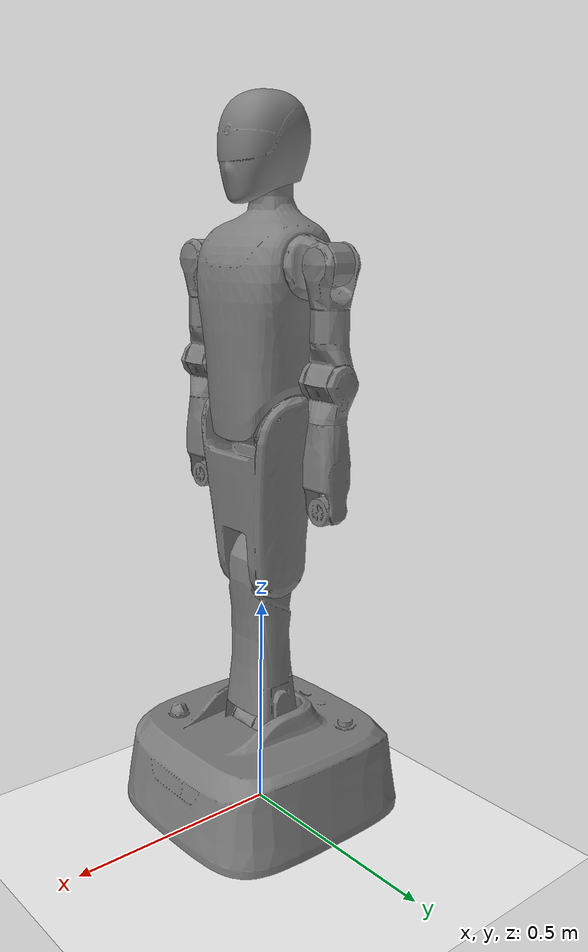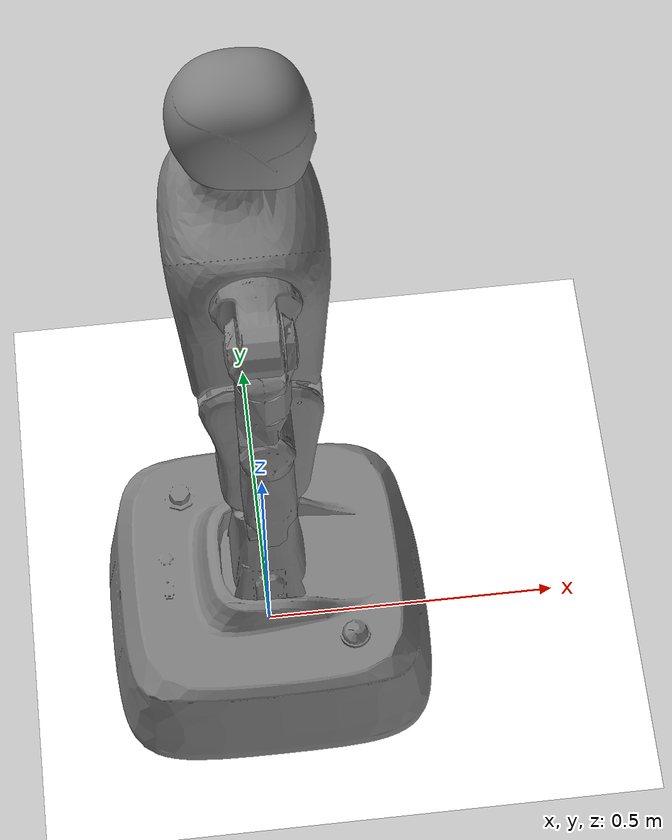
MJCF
<mujoco model="SR1_V1.0.0">
  <compiler angle="radian" />
  <asset>
    <mesh name="mbase" content_type="model/stl" file="meshes/mbase.stl" scale="0.001 0.001 0.001" />
    <mesh name="mfl1_hipr" content_type="model/stl" file="meshes/mfl1_hipr.stl" scale="0.001 0.001 0.001" />
    <mesh name="mfr1_hipr" content_type="model/stl" file="meshes/mfr1_hipr.stl" scale="0.001 0.001 0.001" />
    <mesh name="mrl1_hipr" content_type="model/stl" file="meshes/mrl1_hipr.stl" scale="0.001 0.001 0.001" />
    <mesh name="mrr1_hipr" content_type="model/stl" file="meshes/mrr1_hipr.stl" scale="0.001 0.001 0.001" />
    <mesh name="mwaist_base" content_type="model/stl" file="meshes/mwaist_base.stl" scale="0.001 0.001 0.001" />
    <mesh name="mwb1_waistr" content_type="model/stl" file="meshes/mwb1_waistr.stl" scale="0.001 0.001 0.001" />
    <mesh name="mwb2_waisty" content_type="model/stl" file="meshes/mwb2_waisty.stl" scale="0.001 0.001 0.001" />
    <mesh name="mwb3_waistp" content_type="model/stl" file="meshes/mwb3_waistp.stl" scale="0.001 0.001 0.001" />
    <mesh name="mal0_base" content_type="model/stl" file="meshes/mal0_base.stl" scale="0.001 0.001 0.001" />
    <mesh name="mar0_base" content_type="model/stl" file="meshes/mar0_base.stl" scale="0.001 0.001 0.001" />
    <mesh name="mhd_base" content_type="model/stl" file="meshes/mhd_base.stl" scale="0.001 0.001 0.001" />
    <mesh name="mhd1_heady" content_type="model/stl" file="meshes/mhd1_heady.stl" scale="0.001 0.001 0.001" />
    <mesh name="mhd2_headp" content_type="model/stl" file="meshes/mhd2_headp.stl" scale="0.001 0.001 0.001" />
    <mesh name="mar1_shp" content_type="model/stl" file="meshes/mar1_shp.stl" scale="0.001 0.001 0.001" />
    <mesh name="mar2_shr" content_type="model/stl" file="meshes/mar2_shr.stl" scale="0.001 0.001 0.001" />
    <mesh name="mar3_shy" content_type="model/stl" file="meshes/mar3_shy.stl" scale="0.001 0.001 0.001" />
    <mesh name="mar4_elp" content_type="model/stl" file="meshes/mar4_elp.stl" scale="0.001 0.001 0.001" />
    <mesh name="far4_elp" content_type="model/stl" file="meshes/far4_elp.stl" scale="0.001 0.001 0.001" />
    <mesh name="mar5_wry" content_type="model/stl" file="meshes/mar5_wry.stl" scale="0.001 0.001 0.001" />
    <mesh name="mar6_wrp" content_type="model/stl" file="meshes/mar6_wrp.stl" scale="0.001 0.001 0.001" />
    <mesh name="far6_wrp" content_type="model/stl" file="meshes/far6_wrp.stl" scale="0.001 0.001 0.001" />
    <mesh name="mal1_shp" content_type="model/stl" file="meshes/mal1_shp.stl" scale="0.001 0.001 0.001" />
    <mesh name="mal2_shr" content_type="model/stl" file="meshes/mal2_shr.stl" scale="0.001 0.001 0.001" />
    <mesh name="mal3_shy" content_type="model/stl" file="meshes/mal3_shy.stl" scale="0.001 0.001 0.001" />
    <mesh name="mal4_elp" content_type="model/stl" file="meshes/mal4_elp.stl" scale="0.001 0.001 0.001" />
    <mesh name="fal4_elp" content_type="model/stl" file="meshes/fal4_elp.stl" scale="0.001 0.001 0.001" />
    <mesh name="mal5_wry" content_type="model/stl" file="meshes/mal5_wry.stl" scale="0.001 0.001 0.001" />
    <mesh name="mal6_wrp" content_type="model/stl" file="meshes/mal6_wrp.stl" scale="0.001 0.001 0.001" />
    <mesh name="fal6_wrp" content_type="model/stl" file="meshes/fal6_wrp.stl" scale="0.001 0.001 0.001" />
    <mesh name="mrr2_wheel" content_type="model/stl" file="meshes/mrr2_wheel.stl" scale="0.001 0.001 0.001" />
    <mesh name="mrl2_wheel" content_type="model/stl" file="meshes/mrl2_wheel.stl" scale="0.001 0.001 0.001" />
    <mesh name="mfr2_wheel" content_type="model/stl" file="meshes/mfr2_wheel.stl" scale="0.001 0.001 0.001" />
    <mesh name="mfl2_wheel" content_type="model/stl" file="meshes/mfl2_wheel.stl" scale="0.001 0.001 0.001" />
  </asset>
  <worldbody>
    <body name="MBASE" pos="0 0 0">
      <freejoint name="root_free" />
      <inertial pos="0.0086829 -0.002961 0.0919849" mass="24.9001878" fullinertia="0.8690531 1.0128785 1.4595611 0.0206831 -0.0082502 0.0084967" />
      <geom type="mesh" rgba="0.498043 0.498043 0.498043 1" mesh="mbase" />
      <geom pos="0 0 0.125" quat="1 0 0 0" type="mesh" rgba="0.498043 0.498043 0.498043 1" mesh="mwaist_base" />
      <body name="MFL1_HIPR" pos="0.17 0.165 0.078">
        <inertial pos="-1.34e-05 -0.0336705 -0.0421457" quat="0.676033 -0.208013 0.20742 0.675786" mass="0.796142" diaginertia="0.00149429 0.0012601 0.000782812" />
        <joint name="Jfl1_hipr" pos="0 0 0" axis="0 0 -1" range="-1.91986 1.91986" actuatorfrcrange="-1000000000 1000000000" damping="0.1" frictionloss="0.1" />
        <geom type="mesh" rgba="0.498043 0.498043 0.498043 1" mesh="mfl1_hipr" />
        <body name="MFL2_WHEEL" pos="0 -0.0483 -0.087">
          <inertial pos="2e-07 0.0501086 4.7e-06" quat="0.499926 0.500074 0.499926 0.500074" mass="0.421485" diaginertia="0.000873 0.0005332 0.0005331" />
          <joint name="Jfl2_wheel" pos="0 0 0" axis="0 1 0" />
          <geom type="mesh" rgba="0.498043 0.498043 0.498043 1" mesh="mfl2_wheel" />
        </body>
      </body>
      <body name="MFR1_HIPR" pos="0.17 -0.165 0.078">
        <inertial pos="1.34e-05 0.0336705 -0.0421457" quat="0.676033 0.208013 -0.20742 0.675786" mass="0.796142" diaginertia="0.00149429 0.0012601 0.000782812" />
        <joint name="Jfr1_hipr" pos="0 0 0" axis="0 0 -1" range="-1.91986 1.91986" actuatorfrcrange="-1000000000 1000000000" damping="0.1" frictionloss="0.1" />
        <geom type="mesh" rgba="0.498043 0.498043 0.498043 1" mesh="mfr1_hipr" />
        <body name="MFR2_WHEEL" pos="0 0.0483 -0.087">
          <inertial pos="-2e-07 -0.0501086 4.7e-06" quat="0.500074 0.499926 0.500074 0.499926" mass="0.421485" diaginertia="0.000873 0.0005332 0.0005331" />
          <joint name="Jfr2_wheel" pos="0 0 0" axis="0 -1 0" />
          <geom type="mesh" rgba="0.498043 0.498043 0.498043 1" mesh="mfr2_wheel" />
        </body>
      </body>
      <body name="MRL1_HIPR" pos="-0.17 0.165 0.078">
        <inertial pos="-1.34e-05 -0.0336705 -0.0421457" quat="0.676033 -0.208013 0.20742 0.675786" mass="0.796142" diaginertia="0.00149429 0.0012601 0.000782812" />
        <joint name="Jrl1_hipr" pos="0 0 0" axis="0 0 -1" range="-1.91986 1.91986" actuatorfrcrange="-1000000000 1000000000" damping="0.1" frictionloss="0.1" />
        <geom type="mesh" rgba="0.498043 0.498043 0.498043 1" mesh="mrl1_hipr" />
        <body name="MRL2_WHEEL" pos="0 -0.0483 -0.087">
          <inertial pos="2e-07 0.0501086 4.7e-06" quat="0.499926 0.500074 0.499926 0.500074" mass="0.421485" diaginertia="0.000873 0.0005332 0.0005331" />
          <joint name="Jrl2_wheel" pos="0 0 0" axis="0 1 0" />
          <geom type="mesh" rgba="0.498043 0.498043 0.498043 1" mesh="mrl2_wheel" />
        </body>
      </body>
      <body name="MRR1_HIPR" pos="-0.17 -0.165 0.078">
        <inertial pos="1.34e-05 0.0336705 -0.0421457" quat="0.676033 0.208013 -0.20742 0.675786" mass="0.796142" diaginertia="0.00149429 0.0012601 0.000782812" />
        <joint name="Jrr1_hipr" pos="0 0 0" axis="0 0 -1" range="-1.91986 1.91986" actuatorfrcrange="-1000000000 1000000000" damping="0.1" frictionloss="0.1" />
        <geom type="mesh" rgba="0.498043 0.498043 0.498043 1" mesh="mrr1_hipr" />
        <body name="MRR2_WHEEL" pos="0 0.0483 -0.087">
          <inertial pos="-2e-07 -0.0501086 4.7e-06" quat="0.500074 0.499926 0.500074 0.499926" mass="0.421485" diaginertia="0.000873 0.0005332 0.0005331" />
          <joint name="Jrr2_wheel" pos="0 0 0" axis="0 -1 0" />
          <geom type="mesh" rgba="0.498043 0.498043 0.498043 1" mesh="mrr2_wheel" />
        </body>
      </body>
      <body name="MWB1_WAISTR" pos="0 -0.05475 0.19">
        <inertial pos="0.0012345 0.0390939 0.270592" quat="0.999258 0.0379516 0.000277641 -0.00653111" mass="6.01051" diaginertia="0.156419 0.147763 0.0154012" />
        <joint name="Jwb1_waistr" pos="0 0 0" axis="0 -1 0" range="-1.22173 0.0872665" actuatorfrcrange="-1000000000 1000000000" damping="0.1" frictionloss="0.1" />
        <geom type="mesh" rgba="0.498043 0.498043 0.498043 1" mesh="mwb1_waistr" />
        <body name="MWB2_WAISTY" pos="1e-05 0 0.41">
          <inertial pos="0.0133923 0.0385871 0.239507" quat="0.995324 0.0738776 0.0582547 0.0218894" mass="5.55028" diaginertia="0.0787391 0.0661344 0.0242048" />
          <joint name="Jwb2_waisty" pos="0 0 0" axis="0 -1 0" range="-2.0944 0.785398" actuatorfrcrange="-1000000000 1000000000" damping="0.1" frictionloss="0.1" />
          <geom type="mesh" rgba="0.498043 0.498043 0.498043 1" mesh="mwb2_waisty" />
          <body name="MWB3_WAISTP" pos="0.03 0 0.32">
            <inertial pos="-0.0310008 0.0375601 0.237048" quat="0.987825 0.0748222 -0.0709092 0.116512" mass="10.7737" diaginertia="0.213607 0.206482 0.0841121" />
            <joint name="Jwb3_waistp" pos="0 0 0" axis="0 -1 0" range="-0.872665 0.174533" actuatorfrcrange="-1000000000 1000000000" damping="0.1" frictionloss="0.1" />
            <geom type="mesh" rgba="0.498043 0.498043 0.498043 1" mesh="mwb3_waistp" />
            <geom pos="-0.0300232 0.13475 0.328407" quat="1 0 0 0" type="mesh" rgba="0.498043 0.498043 0.498043 1" mesh="mal0_base" />
            <geom pos="-0.0299967 -0.02525 0.328407" quat="1 0 0 0" type="mesh" rgba="0.498043 0.498043 0.498043 1" mesh="mar0_base" />
            <geom pos="-0.0609921 0.05475 0.405" quat="1 0 0 0" type="mesh" rgba="0.498043 0.498043 0.498043 1" mesh="mhd_base" />
            <body name="MAL1_SHP" pos="-0.0300232 0.190324 0.334248" quat="0.99863 0.052336 0 0">
              <inertial pos="0.0020554 0.0591199 0.0001072" quat="0.707497 0.706413 -0.0199386 -0.0055574" mass="0.983307" diaginertia="0.00125641 0.00114385 0.000901138" />
              <joint name="Jal1_armr" pos="0 0 0" axis="0 1 0" range="-2.26893 3.14159" actuatorfrcrange="-1000000000 1000000000" damping="0.1" frictionloss="0.1" />
              <geom type="mesh" rgba="0.498043 0.498043 0.498043 1" mesh="mal1_shp" />
              <body name="MAL2_SHR" pos="-0.03125 0.06875 0" quat="0.99863 -0.052336 0 0">
                <inertial pos="0.0352176 4.29e-05 -0.0291185" quat="0.689136 0.165898 0.167606 0.685184" mass="0.402256" diaginertia="0.00104501 0.000820482 0.000626809" />
                <joint name="Jal2_armp" pos="0 0 0" axis="-1 0 0" range="-3.14159 0.10472" actuatorfrcrange="-1000000000 1000000000" damping="0.1" frictionloss="0.1" />
                <geom type="mesh" rgba="0.498043 0.498043 0.498043 1" mesh="mal2_shr" />
                <body name="MAL3_SHY" pos="0.0312356 -2.73e-05 -0.0945529">
                  <inertial pos="-0.0007195 0.0003 -0.080871" quat="0.997531 0.00413531 0.00559687 -0.0698833" mass="1.14284" diaginertia="0.00393417 0.00388642 0.000850205" />
                  <joint name="Jal3_army" pos="0 0 0" axis="0 0 1" range="-1.5708 1.5708" actuatorfrcrange="-1000000000 1000000000" damping="0.1" frictionloss="0.1" />
                  <geom type="mesh" rgba="0.498043 0.498043 0.498043 1" mesh="mal3_shy" />
                  <body name="MAL4_ELP" pos="0 -0.0260116 -0.133688" quat="1 -3.68e-05 0 0">
                    <inertial pos="-0.00354865 0.0261498 -0.0282704" quat="0.996638 -0.0798854 0.0181211 0.00148336" mass="0.372735" diaginertia="0.000888724 0.000622163 0.000601806" />
                    <joint name="Jal4_elbp" pos="0 0 0" axis="0 -1 0" range="0 2.0944" actuatorfrcrange="-1000000000 1000000000" damping="0.1" frictionloss="0.1" />
                    <geom type="mesh" rgba="0.498043 0.498043 0.498043 1" mesh="mal4_elp" />
                    <geom pos="1.42e-05 0.026 0" type="mesh" rgba="0.498043 0.498043 0.498043 1" mesh="fal4_elp" />
                    <body name="MAL5_WRY" pos="0 0.026 -0.0871975">
                      <inertial pos="0.0002437 0.0016117 -0.0643613" quat="0.999678 0.0161543 0.00943339 -0.0171316" mass="1.0783" diaginertia="0.00238805 0.00227711 0.000831435" />
                      <joint name="Jal5_wristy" pos="0 0 0" axis="0 0 1" range="-1.5708 1.5708" actuatorfrcrange="-1000000000 1000000000" damping="0.1" frictionloss="0.1" />
                      <geom type="mesh" rgba="0.498043 0.498043 0.498043 1" mesh="mal5_wry" />
                      <body name="MAL6_WRP" pos="3.56e-05 -1e-07 -0.178452">
                        <inertial pos="-0.00561886 -0.000300561 -8.18894e-05" quat="-0.0418308 0.700084 0.046659 0.711306" mass="0.444132" diaginertia="0.000232357 0.000225953 0.000206591" />
                        <joint name="Jal6_wristr" pos="0 0 0" axis="0 -1 0" range="-0.872665 0.872665" actuatorfrcrange="-1000000000 1000000000" damping="0.1" frictionloss="0.1" />
                        <geom type="mesh" rgba="0.498043 0.498043 0.498043 1" mesh="mal6_wrp" />
                        <geom pos="0.024125 0 0" type="mesh" rgba="0.498043 0.498043 0.498043 1" mesh="fal6_wrp" />
                      </body>
                    </body>
                  </body>
                </body>
              </body>
            </body>
            <body name="MAR1_SHP" pos="-0.0299967 -0.0808244 0.334248" quat="0.99863 -0.052336 0 0">
              <inertial pos="-0.0020554 -0.0591199 0.0001072" quat="0.706413 0.707497 -0.0055574 -0.0199386" mass="0.983307" diaginertia="0.00125641 0.00114385 0.000901138" />
              <joint name="Jar1_armr" pos="0 0 0" axis="0 -1 0" range="-2.26893 3.14159" actuatorfrcrange="-1000000000 1000000000" damping="0.1" frictionloss="0.1" />
              <geom type="mesh" rgba="0.498043 0.498043 0.498043 1" mesh="mar1_shp" />
              <body name="MAR2_SHR" pos="-0.0371305 -0.06875 0" quat="0.99863 0.052336 0 0">
                <inertial pos="0.0410985 4.29e-05 -0.0291185" quat="0.689136 0.165898 0.167606 0.685184" mass="0.402256" diaginertia="0.00104501 0.000820482 0.000626809" />
                <joint name="Jar2_armp" pos="0 0 0" axis="-1 0 0" range="-0.10472 3.14159" actuatorfrcrange="-1000000000 1000000000" damping="0.1" frictionloss="0.1" />
                <geom type="mesh" rgba="0.498043 0.498043 0.498043 1" mesh="mar2_shr" />
                <body name="MAR3_SHY" pos="0.0371165 -2.73e-05 -0.0945529">
                  <inertial pos="-0.0007195 0.0003 -0.080871" quat="0.997531 0.00413531 0.00559687 -0.0698833" mass="1.14284" diaginertia="0.00393417 0.00388642 0.000850205" />
                  <joint name="Jar3_army" pos="0 0 0" axis="0 0 1" range="-1.5708 1.5708" actuatorfrcrange="-1000000000 1000000000" damping="0.1" frictionloss="0.1" />
                  <geom type="mesh" rgba="0.498043 0.498043 0.498043 1" mesh="mar3_shy" />
                  <body name="MAR4_ELP" pos="0 -0.0260116 -0.133688" quat="1 -3.68e-05 0 0">
                    <inertial pos="-0.00354865 0.0261498 -0.0282704" quat="0.996638 -0.0798854 0.0181211 0.00148336" mass="0.372735" diaginertia="0.000888724 0.000622163 0.000601806" />
                    <joint name="Jar4_elbp" pos="0 0 0" axis="0 -1 0" range="0 2.0944" actuatorfrcrange="-1000000000 1000000000" damping="0.1" frictionloss="0.1" />
                    <geom type="mesh" rgba="0.498043 0.498043 0.498043 1" mesh="mar4_elp" />
                    <geom pos="1.42e-05 0.026 0" type="mesh" rgba="0.498043 0.498043 0.498043 1" mesh="far4_elp" />
                    <body name="MAR5_WRY" pos="0 0.026 -0.0871975" quat="0.999965 0 0 0.00838145">
                      <inertial pos="0.0002437 0.0016117 -0.0643613" quat="0.999678 0.0161543 0.00943339 -0.0171316" mass="1.0783" diaginertia="0.00238805 0.00227711 0.000831435" />
                      <joint name="Jar5_wristy" pos="0 0 0" axis="0 0 1" range="-1.5708 1.5708" actuatorfrcrange="-1000000000 1000000000" damping="0.1" frictionloss="0.1" />
                      <geom type="mesh" rgba="0.498043 0.498043 0.498043 1" mesh="mar5_wry" />
                      <body name="MAR6_WRP" pos="3.56e-05 -1e-07 -0.178452">
                        <inertial pos="-0.00561886 -0.000300561 -8.18894e-05" quat="-0.0418308 0.700084 0.046659 0.711306" mass="0.444132" diaginertia="0.000232357 0.000225953 0.000206591" />
                        <joint name="Jar6_wristr" pos="0 0 0" axis="0 -1 0" range="-0.872665 0.872665" actuatorfrcrange="-1000000000 1000000000" damping="0.1" frictionloss="0.1" />
                        <geom type="mesh" rgba="0.498043 0.498043 0.498043 1" mesh="mar6_wrp" />
                        <geom pos="0.024125 0 0" type="mesh" rgba="0.498043 0.498043 0.498043 1" mesh="far6_wrp" />
                      </body>
                    </body>
                  </body>
                </body>
              </body>
            </body>
            <body name="MHD1_HEADY" pos="-0.0489921 0.05475 0.4967">
              <inertial pos="-0.0010285 -0.0025497 0.0187775" quat="0.0268014 0.704094 0.0222932 0.709251" mass="0.201413" diaginertia="7.77501e-05 6.7652e-05 5.04979e-05" />
              <joint name="Jhd1_heady" pos="0 0 0" axis="0 0 1" range="-1.5708 1.5708" actuatorfrcrange="-1000000000 1000000000" damping="0.1" frictionloss="0.1" />
              <geom type="mesh" rgba="0.498043 0.498043 0.498043 1" mesh="mhd1_heady" />
              <body name="MHD2_HEADP" pos="-0.012 0 0.02025">
                <inertial pos="0.0344163 5e-07 0.0559281" quat="0.671682 -0.220984 -0.22099 0.671695" mass="9.86913" diaginertia="0.0452911 0.0384098 0.0314942" />
                <joint name="Jhd2_headp" pos="0 0 0" axis="0 1 0" range="-0.558505 0.279253" actuatorfrcrange="-1000000000 1000000000" damping="0.1" frictionloss="0.1" />
                <geom type="mesh" rgba="0.498043 0.498043 0.498043 1" mesh="mhd2_headp" />
              </body>
            </body>
          </body>
        </body>
      </body>
    </body>
  </worldbody>

  <contact>
    <exclude body1="MBASE" body2="MFL1_HIPR"/>
    <exclude body1="MBASE" body2="MFR1_HIPR"/>
    <exclude body1="MBASE" body2="MRL1_HIPR"/>
    <exclude body1="MBASE" body2="MRR1_HIPR"/>
    <exclude body1="MFL1_HIPR" body2="MFL2_WHEEL"/>
    <exclude body1="MFR1_HIPR" body2="MFR2_WHEEL"/>
    <exclude body1="MRL1_HIPR" body2="MRL2_WHEEL"/>
    <exclude body1="MRR1_HIPR" body2="MRR2_WHEEL"/>
    <exclude body1="MBASE" body2="MWB1_WAISTR"/>
    <exclude body1="MWB1_WAISTR" body2="MWB2_WAISTY"/>
    <exclude body1="MWB2_WAISTY" body2="MWB3_WAISTP"/>
    <exclude body1="MWB3_WAISTP" body2="MAL1_SHP"/>
    <exclude body1="MWB3_WAISTP" body2="MAR1_SHP"/>
    <exclude body1="MAL1_SHP" body2="MAL2_SHR"/>
    <exclude body1="MAL2_SHR" body2="MAL3_SHY"/>
    <exclude body1="MAL3_SHY" body2="MAL4_ELP"/>
    <exclude body1="MAL4_ELP" body2="MAL5_WRY"/>
    <exclude body1="MAL5_WRY" body2="MAL6_WRP"/>
    <exclude body1="MAR1_SHP" body2="MAR2_SHR"/>
    <exclude body1="MAR2_SHR" body2="MAR3_SHY"/>
    <exclude body1="MAR3_SHY" body2="MAR4_ELP"/>
    <exclude body1="MAR4_ELP" body2="MAR5_WRY"/>
    <exclude body1="MAR5_WRY" body2="MAR6_WRP"/>
    <exclude body1="MWB3_WAISTP" body2="MHD1_HEADY"/>
    <exclude body1="MHD1_HEADY" body2="MHD2_HEADP"/>
  </contact>

  <actuator>
    <position name="Jfl1_hipr" joint="Jfl1_hipr" ctrlrange="-1.91986 1.91986" kp="200" kv="20"/>
    <motor name="Jfl2_wheel" joint="Jfl2_wheel" ctrlrange="-100 100" gear="1"/>
    <position name="Jfr1_hipr" joint="Jfr1_hipr" ctrlrange="-1.91986 1.91986" kp="200" kv="20"/>
    <motor name="Jfr2_wheel" joint="Jfr2_wheel" ctrlrange="-100 100" gear="1"/>
    <position name="Jrl1_hipr" joint="Jrl1_hipr" ctrlrange="-1.91986 1.91986" kp="200" kv="20"/>
    <motor name="Jrl2_wheel" joint="Jrl2_wheel" ctrlrange="-100 100" gear="1"/>
    <position name="Jrr1_hipr" joint="Jrr1_hipr" ctrlrange="-1.91986 1.91986" kp="200" kv="20"/>
    <motor name="Jrr2_wheel" joint="Jrr2_wheel" ctrlrange="-100 100" gear="1"/>

    <position name="Jwb1_waistr" joint="Jwb1_waistr" ctrlrange="-1.22173 0.0872665" kp="800" kv="80"/>
    <position name="Jwb2_waisty" joint="Jwb2_waisty" ctrlrange="-2.0944 0.785398" kp="800" kv="80"/>
    <position name="Jwb3_waistp" joint="Jwb3_waistp" ctrlrange="-0.872665 0.174533" kp="800" kv="80"/>

    <position name="Jal1_armr" joint="Jal1_armr" ctrlrange="-2.26893 3.14159" kp="300" kv="30"/>
    <position name="Jal2_armp" joint="Jal2_armp" ctrlrange="-3.14159 0.10472" kp="250" kv="25"/>
    <position name="Jal3_army" joint="Jal3_army" ctrlrange="-1.5708 1.5708" kp="200" kv="20"/>
    <position name="Jal4_elbp" joint="Jal4_elbp" ctrlrange="0 2.0944" kp="150" kv="15"/>
    <position name="Jal5_wristy" joint="Jal5_wristy" ctrlrange="-1.5708 1.5708" kp="80" kv="8"/>
    <position name="Jal6_wristr" joint="Jal6_wristr" ctrlrange="-0.872665 0.872665" kp="50" kv="5"/>

    <position name="Jar1_armr" joint="Jar1_armr" ctrlrange="-2.26893 3.14159" kp="300" kv="30"/>
    <position name="Jar2_armp" joint="Jar2_armp" ctrlrange="-0.10472 3.14159" kp="250" kv="25"/>
    <position name="Jar3_army" joint="Jar3_army" ctrlrange="-1.5708 1.5708" kp="200" kv="20"/>
    <position name="Jar4_elbp" joint="Jar4_elbp" ctrlrange="0 2.0944" kp="150" kv="15"/>
    <position name="Jar5_wristy" joint="Jar5_wristy" ctrlrange="-1.5708 1.5708" kp="80" kv="8"/>
    <position name="Jar6_wristr" joint="Jar6_wristr" ctrlrange="-0.872665 0.872665" kp="50" kv="5"/>

    <position name="Jhd1_heady" joint="Jhd1_heady" ctrlrange="-1.5708 1.5708" kp="100" kv="10"/>
    <position name="Jhd2_headp" joint="Jhd2_headp" ctrlrange="-0.558505 0.279253" kp="100" kv="10"/>
  </actuator>

  <statistic center="1.0 0.7 1.0" extent="0.8"/>
  <visual>
    <headlight diffuse="0.6 0.6 0.6" ambient="0.1 0.1 0.1" specular="0.9 0.9 0.9"/>
    <rgba haze="0.15 0.25 0.35 1"/>
    <global azimuth="-140" elevation="-20" offwidth="2080" offheight="1170"/>
  </visual>
  <asset>
     <texture type="skybox" builtin="gradient" rgb1="1 1 1" rgb2="1 1 1" width="800" height="800"/>
    <texture type="2d" name="groundplane" builtin="checker" mark="edge" rgb1="1 1 1" rgb2="1 1 1" markrgb="0 0 0"
      width="300" height="300"/>
    <material name="groundplane" texture="groundplane" texuniform="true" texrepeat="5 5" reflectance="0"/>
    <texture type="skybox" builtin="gradient" rgb1=".4 .5 .6" rgb2="0 0 0" width="100" height="100"/>
    <texture builtin="flat" height="1278" mark="cross" markrgb="1 1 1" name="texgeom" random="0.01" rgb1="0.8 0.6 0.4" rgb2="0.8 0.6 0.4" type="cube" width="127"/>
    <texture name="texplane" builtin="checker" height="512" width="512" rgb1=".2 .3 .4" rgb2=".1 .15 .2" type="2d" />
    <material name="MatPlane" reflectance="0.5" shininess="0.01" specular="0.1" texrepeat="1 1" texture="texplane" texuniform="true" />
    <material name="geom" texture="texgeom" texuniform="true"/>
  </asset>
  <worldbody>
    <geom name="floor" size="0 0 0.01" type="plane" material="groundplane" contype="1" conaffinity="0" priority="1"
      friction="0.6" condim="3"/>

        <light diffuse=".5 .5 .5" pos="-3 -3 5" dir="3 3 -5" castshadow="true"/>

  </worldbody>

</mujoco>
